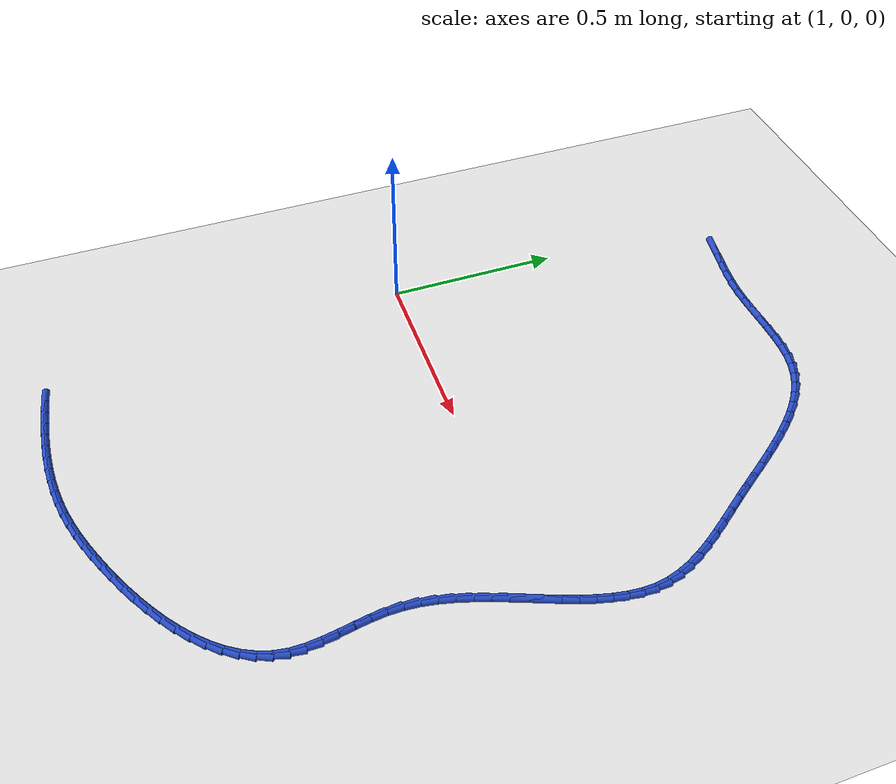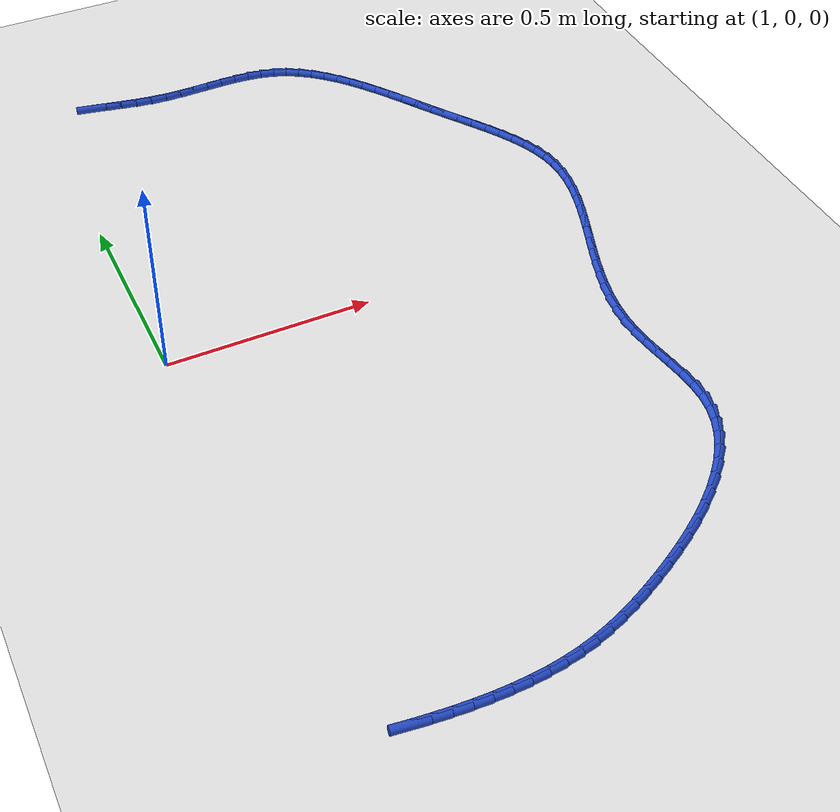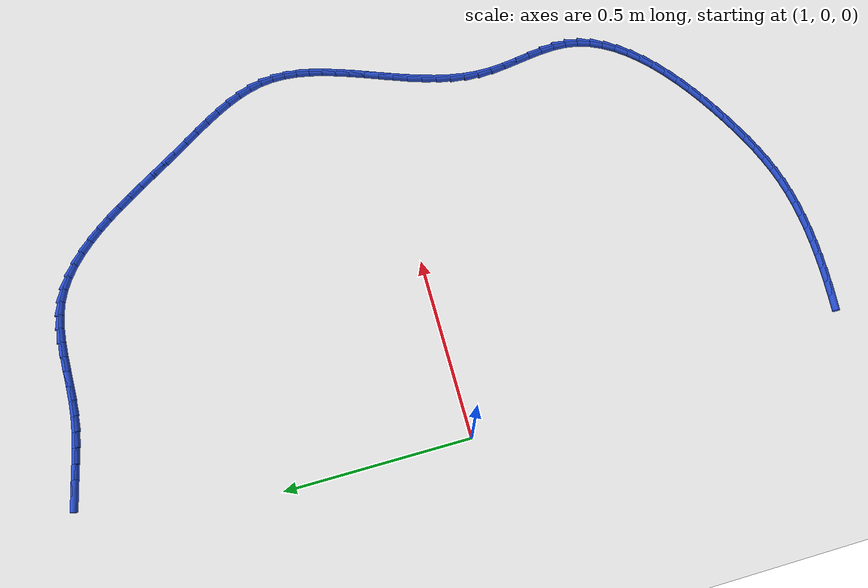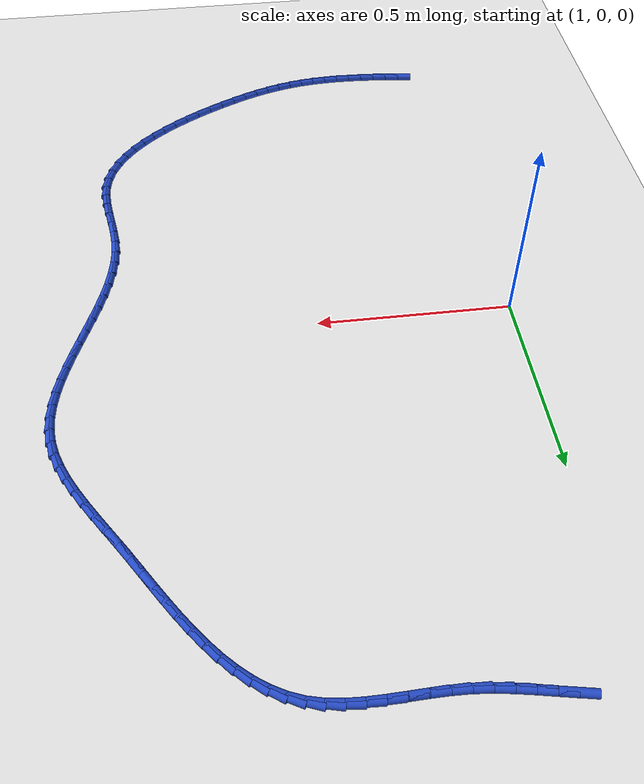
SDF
<sdf version="1.6">
 <world name="default">
  <model name="ground_plane">
   <static>1</static>
   <link name="link">
    <collision name="collision">
     <geometry><plane><normal>0 0 1</normal><size>100 100</size></plane></geometry>
     <surface><friction><ode><mu>100</mu><mu2>50</mu2></ode></friction></surface>
    </collision>
    <visual name="visual">
     <cast_shadows>0</cast_shadows>
     <geometry><plane><normal>0 0 1</normal><size>100 100</size></plane></geometry>
     <material>
      <script><uri>file://media/materials/scripts/gazebo.material</uri><name>Gazebo/WhiteGlow</name></script>
     </material>
    </visual>
   </link>
  </model>
  <model name="line">
   <link name="link_43">
    <pose>1.1327370070030243 1.010437711589605 0.01 0 1.57 -0.18697242384630391</pose>
    <collision name="collision">
     <geometry><cylinder><radius>0.01</radius><length>0.08</length></cylinder></geometry>
    </collision>
    <visual name="visual">
     <material>
      <script><name>Gazebo/Blue</name><uri>file://media/materials/scripts/gazebo.material</uri></script>
     </material>
     <geometry><cylinder><radius>0.01</radius><length>0.08</length></cylinder></geometry>
    </visual>
   </link>
   <link name="link_44">
    <pose>1.171977440912676 1.0030141239727182 0.01 0 1.57 -0.19207760746956504</pose>
    <collision name="collision">
     <geometry><cylinder><radius>0.01</radius><length>0.08</length></cylinder></geometry>
    </collision>
    <visual name="visual">
     <material>
      <script><name>Gazebo/Blue</name><uri>file://media/materials/scripts/gazebo.material</uri></script>
     </material>
     <geometry><cylinder><radius>0.01</radius><length>0.08</length></cylinder></geometry>
    </visual>
   </link>
   <link name="link_45">
    <pose>1.2115653838122473 0.9953152526959689 0.01 0 1.57 -0.1776722749751937</pose>
    <collision name="collision">
     <geometry><cylinder><radius>0.01</radius><length>0.08</length></cylinder></geometry>
    </collision>
    <visual name="visual">
     <material>
      <script><name>Gazebo/Blue</name><uri>file://media/materials/scripts/gazebo.material</uri></script>
     </material>
     <geometry><cylinder><radius>0.01</radius><length>0.08</length></cylinder></geometry>
    </visual>
   </link>
   <link name="link_46">
    <pose>1.2515378458271778 0.9881375679702079 0.01 0 1.57 -0.14406671686101993</pose>
    <collision name="collision">
     <geometry><cylinder><radius>0.01</radius><length>0.08</length></cylinder></geometry>
    </collision>
    <visual name="visual">
     <material>
      <script><name>Gazebo/Blue</name><uri>file://media/materials/scripts/gazebo.material</uri></script>
     </material>
     <geometry><cylinder><radius>0.01</radius><length>0.08</length></cylinder></geometry>
    </visual>
   </link>
   <link name="link_47">
    <pose>1.2919318370829087 0.982277540006286 0.01 0 1.57 -0.09146678892255376</pose>
    <collision name="collision">
     <geometry><cylinder><radius>0.01</radius><length>0.08</length></cylinder></geometry>
    </collision>
    <visual name="visual">
     <material>
      <script><name>Gazebo/Blue</name><uri>file://media/materials/scripts/gazebo.material</uri></script>
     </material>
     <geometry><cylinder><radius>0.01</radius><length>0.08</length></cylinder></geometry>
    </visual>
   </link>
   <link name="link_48">
    <pose>1.3327841298732073 0.9785304565483715 0.01 0 1.57 -0.031044724939890685</pose>
    <collision name="collision">
     <geometry><cylinder><radius>0.01</radius><length>0.08</length></cylinder></geometry>
    </collision>
    <visual name="visual">
     <material>
      <script><name>Gazebo/Blue</name><uri>file://media/materials/scripts/gazebo.material</uri></script>
     </material>
     <geometry><cylinder><radius>0.01</radius><length>0.08</length></cylinder></geometry>
    </visual>
   </link>
   <link name="link_49">
    <pose>1.3740425126423634 0.9772491897597785 0.01 0 1.57 0.010476320669949028</pose>
    <collision name="collision">
     <geometry><cylinder><radius>0.01</radius><length>0.08</length></cylinder></geometry>
    </collision>
    <visual name="visual">
     <material>
      <script><name>Gazebo/Blue</name><uri>file://media/materials/scripts/gazebo.material</uri></script>
     </material>
     <geometry><cylinder><radius>0.01</radius><length>0.08</length></cylinder></geometry>
    </visual>
   </link>
   <link name="link_50">
    <pose>1.4154327668275317 0.977682823199582 0.01 0 1.57 0.02979491065720952</pose>
    <collision name="collision">
     <geometry><cylinder><radius>0.01</radius><length>0.08</length></cylinder></geometry>
    </collision>
    <visual name="visual">
     <material>
      <script><name>Gazebo/Blue</name><uri>file://media/materials/scripts/gazebo.material</uri></script>
     </material>
     <geometry><cylinder><radius>0.01</radius><length>0.08</length></cylinder></geometry>
    </visual>
   </link>
   <link name="link_51">
    <pose>1.456646624153628 0.9789111498948614 0.01 0 1.57 0.02707010692603462</pose>
    <collision name="collision">
     <geometry><cylinder><radius>0.01</radius><length>0.08</length></cylinder></geometry>
    </collision>
    <visual name="visual">
     <material>
      <script><name>Gazebo/Blue</name><uri>file://media/materials/scripts/gazebo.material</uri></script>
     </material>
     <geometry><cylinder><radius>0.01</radius><length>0.08</length></cylinder></geometry>
    </visual>
   </link>
   <link name="link_52">
    <pose>1.4973758163455697 0.9800139628726963 0.01 0 1.57 0.0014295843004920234</pose>
    <collision name="collision">
     <geometry><cylinder><radius>0.01</radius><length>0.08</length></cylinder></geometry>
    </collision>
    <visual name="visual">
     <material>
      <script><name>Gazebo/Blue</name><uri>file://media/materials/scripts/gazebo.material</uri></script>
     </material>
     <geometry><cylinder><radius>0.01</radius><length>0.08</length></cylinder></geometry>
    </visual>
   </link>
   <link name="link_53">
    <pose>1.5373120751282734 0.9800710551601658 0.01 0 1.57 -0.049112851169080055</pose>
    <collision name="collision">
     <geometry><cylinder><radius>0.01</radius><length>0.08</length></cylinder></geometry>
    </collision>
    <visual name="visual">
     <material>
      <script><name>Gazebo/Blue</name><uri>file://media/materials/scripts/gazebo.material</uri></script>
     </material>
     <geometry><cylinder><radius>0.01</radius><length>0.08</length></cylinder></geometry>
    </visual>
   </link>
   <link name="link_54">
    <pose>1.5761471322266551 0.9781622197843488 0.01 0 1.57 -0.12742590527282288</pose>
    <collision name="collision">
     <geometry><cylinder><radius>0.01</radius><length>0.08</length></cylinder></geometry>
    </collision>
    <visual name="visual">
     <material>
      <script><name>Gazebo/Blue</name><uri>file://media/materials/scripts/gazebo.material</uri></script>
     </material>
     <geometry><cylinder><radius>0.01</radius><length>0.08</length></cylinder></geometry>
    </visual>
   </link>
   <link name="link_55">
    <pose>1.6135727193656337 0.9733672497723256 0.01 0 1.57 -0.23637345175117339</pose>
    <collision name="collision">
     <geometry><cylinder><radius>0.01</radius><length>0.08</length></cylinder></geometry>
    </collision>
    <visual name="visual">
     <material>
      <script><name>Gazebo/Blue</name><uri>file://media/materials/scripts/gazebo.material</uri></script>
     </material>
     <geometry><cylinder><radius>0.01</radius><length>0.08</length></cylinder></geometry>
    </visual>
   </link>
   <link name="link_56">
    <pose>1.6492806139703906 0.9647660619033969 0.01 0 1.57 -0.3685137428374353</pose>
    <collision name="collision">
     <geometry><cylinder><radius>0.01</radius><length>0.08</length></cylinder></geometry>
    </collision>
    <visual name="visual">
     <material>
      <script><name>Gazebo/Blue</name><uri>file://media/materials/scripts/gazebo.material</uri></script>
     </material>
     <geometry><cylinder><radius>0.01</radius><length>0.08</length></cylinder></geometry>
    </visual>
   </link>
   <link name="link_57">
    <pose>1.6830663559299277 0.9517195523998742 0.01 0 1.57 -0.4946535043019818</pose>
    <collision name="collision">
     <geometry><cylinder><radius>0.01</radius><length>0.08</length></cylinder></geometry>
    </collision>
    <visual name="visual">
     <material>
      <script><name>Gazebo/Blue</name><uri>file://media/materials/scripts/gazebo.material</uri></script>
     </material>
     <geometry><cylinder><radius>0.01</radius><length>0.08</length></cylinder></geometry>
    </visual>
   </link>
   <link name="link_58">
    <pose>1.715050253666191 0.9344680615348027 0.01 0 1.57 -0.6060366607881206</pose>
    <collision name="collision">
     <geometry><cylinder><radius>0.01</radius><length>0.08</length></cylinder></geometry>
    </collision>
    <visual name="visual">
     <material>
      <script><name>Gazebo/Blue</name><uri>file://media/materials/scripts/gazebo.material</uri></script>
     </material>
     <geometry><cylinder><radius>0.01</radius><length>0.08</length></cylinder></geometry>
    </visual>
   </link>
   <link name="link_59">
    <pose>1.7454159838278123 0.9134235250540369 0.01 0 1.57 -0.701155440004282</pose>
    <collision name="collision">
     <geometry><cylinder><radius>0.01</radius><length>0.08</length></cylinder></geometry>
    </collision>
    <visual name="visual">
     <material>
      <script><name>Gazebo/Blue</name><uri>file://media/materials/scripts/gazebo.material</uri></script>
     </material>
     <geometry><cylinder><radius>0.01</radius><length>0.08</length></cylinder></geometry>
    </visual>
   </link>
   <link name="link_60">
    <pose>1.774347223063422 0.8889978787034305 0.01 0 1.57 -0.7802124956566824</pose>
    <collision name="collision">
     <geometry><cylinder><radius>0.01</radius><length>0.08</length></cylinder></geometry>
    </collision>
    <visual name="visual">
     <material>
      <script><name>Gazebo/Blue</name><uri>file://media/materials/scripts/gazebo.material</uri></script>
     </material>
     <geometry><cylinder><radius>0.01</radius><length>0.08</length></cylinder></geometry>
    </visual>
   </link>
   <link name="link_61">
    <pose>1.8020276480216533 0.8616030582288373 0.01 0 1.57 -0.8443547942164572</pose>
    <collision name="collision">
     <geometry><cylinder><radius>0.01</radius><length>0.08</length></cylinder></geometry>
    </collision>
    <visual name="visual">
     <material>
      <script><name>Gazebo/Blue</name><uri>file://media/materials/scripts/gazebo.material</uri></script>
     </material>
     <geometry><cylinder><radius>0.01</radius><length>0.08</length></cylinder></geometry>
    </visual>
   </link>
   <link name="link_62">
    <pose>1.8286409353511361 0.8316509993761118 0.01 0 1.57 -0.8950695087315674</pose>
    <collision name="collision">
     <geometry><cylinder><radius>0.01</radius><length>0.08</length></cylinder></geometry>
    </collision>
    <visual name="visual">
     <material>
      <script><name>Gazebo/Blue</name><uri>file://media/materials/scripts/gazebo.material</uri></script>
     </material>
     <geometry><cylinder><radius>0.01</radius><length>0.08</length></cylinder></geometry>
    </visual>
   </link>
   <link name="link_63">
    <pose>1.854370761700503 0.799553637891107 0.01 0 1.57 -0.9338157150253733</pose>
    <collision name="collision">
     <geometry><cylinder><radius>0.01</radius><length>0.08</length></cylinder></geometry>
    </collision>
    <visual name="visual">
     <material>
      <script><name>Gazebo/Blue</name><uri>file://media/materials/scripts/gazebo.material</uri></script>
     </material>
     <geometry><cylinder><radius>0.01</radius><length>0.08</length></cylinder></geometry>
    </visual>
   </link>
   <link name="link_64">
    <pose>1.8794008037183847 0.7657229095196778 0.01 0 1.57 -0.9618400783355507</pose>
    <collision name="collision">
     <geometry><cylinder><radius>0.01</radius><length>0.08</length></cylinder></geometry>
    </collision>
    <visual name="visual">
     <material>
      <script><name>Gazebo/Blue</name><uri>file://media/materials/scripts/gazebo.material</uri></script>
     </material>
     <geometry><cylinder><radius>0.01</radius><length>0.08</length></cylinder></geometry>
    </visual>
   </link>
   <link name="link_65">
    <pose>1.9039147380534125 0.7305707500076776 0.01 0 1.57 -0.9801031800926108</pose>
    <collision name="collision">
     <geometry><cylinder><radius>0.01</radius><length>0.08</length></cylinder></geometry>
    </collision>
    <visual name="visual">
     <material>
      <script><name>Gazebo/Blue</name><uri>file://media/materials/scripts/gazebo.material</uri></script>
     </material>
     <geometry><cylinder><radius>0.01</radius><length>0.08</length></cylinder></geometry>
    </visual>
   </link>
   <link name="link_66">
    <pose>1.9280962413542189 0.6945090951009601 0.01 0 1.57 -0.989260997402861</pose>
    <collision name="collision">
     <geometry><cylinder><radius>0.01</radius><length>0.08</length></cylinder></geometry>
    </collision>
    <visual name="visual">
     <material>
      <script><name>Gazebo/Blue</name><uri>file://media/materials/scripts/gazebo.material</uri></script>
     </material>
     <geometry><cylinder><radius>0.01</radius><length>0.08</length></cylinder></geometry>
    </visual>
   </link>
   <link name="link_67">
    <pose>1.9521289902694339 0.6579498805453801 0.01 0 1.57 -0.9896681917891645</pose>
    <collision name="collision">
     <geometry><cylinder><radius>0.01</radius><length>0.08</length></cylinder></geometry>
    </collision>
    <visual name="visual">
     <material>
      <script><name>Gazebo/Blue</name><uri>file://media/materials/scripts/gazebo.material</uri></script>
     </material>
     <geometry><cylinder><radius>0.01</radius><length>0.08</length></cylinder></geometry>
    </visual>
   </link>
   <link name="link_68">
    <pose>1.9761966614476907 0.6213050420867908 0.01 0 1.57 -0.9814410797622237</pose>
    <collision name="collision">
     <geometry><cylinder><radius>0.01</radius><length>0.08</length></cylinder></geometry>
    </collision>
    <visual name="visual">
     <material>
      <script><name>Gazebo/Blue</name><uri>file://media/materials/scripts/gazebo.material</uri></script>
     </material>
     <geometry><cylinder><radius>0.01</radius><length>0.08</length></cylinder></geometry>
    </visual>
   </link>
   <link name="link_69">
    <pose>2.0004809611432925 0.5849851324418796 0.01 0 1.57 -0.9712053492613443</pose>
    <collision name="collision">
     <geometry><cylinder><radius>0.01</radius><length>0.08</length></cylinder></geometry>
    </collision>
    <visual name="visual">
     <material>
      <script><name>Gazebo/Blue</name><uri>file://media/materials/scripts/gazebo.material</uri></script>
     </material>
     <geometry><cylinder><radius>0.01</radius><length>0.08</length></cylinder></geometry>
    </visual>
   </link>
   <link name="link_70">
    <pose>2.024920735771882 0.549230239849291 0.01 0 1.57 -0.9723051321614041</pose>
    <collision name="collision">
     <geometry><cylinder><radius>0.01</radius><length>0.08</length></cylinder></geometry>
    </collision>
    <visual name="visual">
     <material>
      <script><name>Gazebo/Blue</name><uri>file://media/materials/scripts/gazebo.material</uri></script>
     </material>
     <geometry><cylinder><radius>0.01</radius><length>0.08</length></cylinder></geometry>
    </visual>
   </link>
   <link name="link_71">
    <pose>2.0489807535324855 0.5139476947883321 0.01 0 1.57 -0.9868465801911364</pose>
    <collision name="collision">
     <geometry><cylinder><radius>0.01</radius><length>0.08</length></cylinder></geometry>
    </collision>
    <visual name="visual">
     <material>
      <script><name>Gazebo/Blue</name><uri>file://media/materials/scripts/gazebo.material</uri></script>
     </material>
     <geometry><cylinder><radius>0.01</radius><length>0.08</length></cylinder></geometry>
    </visual>
   </link>
   <link name="link_72">
    <pose>2.0720709764454135 0.47900635902030775 0.01 0 1.57 -1.015862871302016</pose>
    <collision name="collision">
     <geometry><cylinder><radius>0.01</radius><length>0.08</length></cylinder></geometry>
    </collision>
    <visual name="visual">
     <material>
      <script><name>Gazebo/Blue</name><uri>file://media/materials/scripts/gazebo.material</uri></script>
     </material>
     <geometry><cylinder><radius>0.01</radius><length>0.08</length></cylinder></geometry>
    </visual>
   </link>
   <link name="link_73">
    <pose>2.093601366530979 0.4442750943065223 0.01 0 1.57 -1.0608527000063255</pose>
    <collision name="collision">
     <geometry><cylinder><radius>0.01</radius><length>0.08</length></cylinder></geometry>
    </collision>
    <visual name="visual">
     <material>
      <script><name>Gazebo/Blue</name><uri>file://media/materials/scripts/gazebo.material</uri></script>
     </material>
     <geometry><cylinder><radius>0.01</radius><length>0.08</length></cylinder></geometry>
    </visual>
   </link>
   <link name="link_74">
    <pose>2.112981885809495 0.4096227624082796 0.01 0 1.57 -1.1236878434630777</pose>
    <collision name="collision">
     <geometry><cylinder><radius>0.01</radius><length>0.08</length></cylinder></geometry>
    </collision>
    <visual name="visual">
     <material>
      <script><name>Gazebo/Blue</name><uri>file://media/materials/scripts/gazebo.material</uri></script>
     </material>
     <geometry><cylinder><radius>0.01</radius><length>0.08</length></cylinder></geometry>
    </visual>
   </link>
   <link name="link_75">
    <pose>2.1296224963012733 0.3749182250868848 0.01 0 1.57 -1.2063157913586733</pose>
    <collision name="collision">
     <geometry><cylinder><radius>0.01</radius><length>0.08</length></cylinder></geometry>
    </collision>
    <visual name="visual">
     <material>
      <script><name>Gazebo/Blue</name><uri>file://media/materials/scripts/gazebo.material</uri></script>
     </material>
     <geometry><cylinder><radius>0.01</radius><length>0.08</length></cylinder></geometry>
    </visual>
   </link>
   <link name="link_76">
    <pose>2.142933160026626 0.3400303441036419 0.01 0 1.57 -1.3101042368183262</pose>
    <collision name="collision">
     <geometry><cylinder><radius>0.01</radius><length>0.08</length></cylinder></geometry>
    </collision>
    <visual name="visual">
     <material>
      <script><name>Gazebo/Blue</name><uri>file://media/materials/scripts/gazebo.material</uri></script>
     </material>
     <geometry><cylinder><radius>0.01</radius><length>0.08</length></cylinder></geometry>
    </visual>
   </link>
   <link name="link_77">
    <pose>2.152323839005867 0.30482798121985527 0.01 0 1.57 -1.4335977611330513</pose>
    <collision name="collision">
     <geometry><cylinder><radius>0.01</radius><length>0.08</length></cylinder></geometry>
    </collision>
    <visual name="visual">
     <material>
      <script><name>Gazebo/Blue</name><uri>file://media/materials/scripts/gazebo.material</uri></script>
     </material>
     <geometry><cylinder><radius>0.01</radius><length>0.08</length></cylinder></geometry>
    </visual>
   </link>
   <link name="link_78">
    <pose>2.1572448606391506 0.2691854369229246 0.01 0 1.57 -1.5565648857223602</pose>
    <collision name="collision">
     <geometry><cylinder><radius>0.01</radius><length>0.08</length></cylinder></geometry>
    </collision>
    <visual name="visual">
     <material>
      <script><name>Gazebo/Blue</name><uri>file://media/materials/scripts/gazebo.material</uri></script>
     </material>
     <geometry><cylinder><radius>0.01</radius><length>0.08</length></cylinder></geometry>
    </visual>
   </link>
   <link name="link_79">
    <pose>2.157759019011677 0.23305953386541228 0.01 0 1.57 1.479381670420758</pose>
    <collision name="collision">
     <geometry><cylinder><radius>0.01</radius><length>0.08</length></cylinder></geometry>
    </collision>
    <visual name="visual">
     <material>
      <script><name>Gazebo/Blue</name><uri>file://media/materials/scripts/gazebo.material</uri></script>
     </material>
     <geometry><cylinder><radius>0.01</radius><length>0.08</length></cylinder></geometry>
    </visual>
   </link>
   <link name="link_80">
    <pose>2.154404961865347 0.19647120998159492 0.01 0 1.57 1.392544693919448</pose>
    <collision name="collision">
     <geometry><cylinder><radius>0.01</radius><length>0.08</length></cylinder></geometry>
    </collision>
    <visual name="visual">
     <material>
      <script><name>Gazebo/Blue</name><uri>file://media/materials/scripts/gazebo.material</uri></script>
     </material>
     <geometry><cylinder><radius>0.01</radius><length>0.08</length></cylinder></geometry>
    </visual>
   </link>
   <link name="link_81">
    <pose>2.1477338329829023 0.15944308688972905 0.01 0 1.57 1.323915078519038</pose>
    <collision name="collision">
     <geometry><cylinder><radius>0.01</radius><length>0.08</length></cylinder></geometry>
    </collision>
    <visual name="visual">
     <material>
      <script><name>Gazebo/Blue</name><uri>file://media/materials/scripts/gazebo.material</uri></script>
     </material>
     <geometry><cylinder><radius>0.01</radius><length>0.08</length></cylinder></geometry>
    </visual>
   </link>
   <link name="link_82">
    <pose>2.138296776147086 0.12199778620807102 0.01 0 1.57 1.2720847655947245</pose>
    <collision name="collision">
     <geometry><cylinder><radius>0.01</radius><length>0.08</length></cylinder></geometry>
    </collision>
    <visual name="visual">
     <material>
      <script><name>Gazebo/Blue</name><uri>file://media/materials/scripts/gazebo.material</uri></script>
     </material>
     <geometry><cylinder><radius>0.01</radius><length>0.08</length></cylinder></geometry>
    </visual>
   </link>
   <link name="link_83">
    <pose>2.1266449351406402 0.08415792955487836 0.01 0 1.57 1.235489419676839</pose>
    <collision name="collision">
     <geometry><cylinder><radius>0.01</radius><length>0.08</length></cylinder></geometry>
    </collision>
    <visual name="visual">
     <material>
      <script><name>Gazebo/Blue</name><uri>file://media/materials/scripts/gazebo.material</uri></script>
     </material>
     <geometry><cylinder><radius>0.01</radius><length>0.08</length></cylinder></geometry>
    </visual>
   </link>
   <link name="link_84">
    <pose>2.1133294537463065 0.04594613854840695 0.01 0 1.57 1.2127633122162744</pose>
    <collision name="collision">
     <geometry><cylinder><radius>0.01</radius><length>0.08</length></cylinder></geometry>
    </collision>
    <visual name="visual">
     <material>
      <script><name>Gazebo/Blue</name><uri>file://media/materials/scripts/gazebo.material</uri></script>
     </material>
     <geometry><cylinder><radius>0.01</radius><length>0.08</length></cylinder></geometry>
    </visual>
   </link>
   <link name="link_85">
    <pose>2.0989014757468283 0.007385034806914357 0.01 0 1.57 1.2028949562697575</pose>
    <collision name="collision">
     <geometry><cylinder><radius>0.01</radius><length>0.08</length></cylinder></geometry>
    </collision>
    <visual name="visual">
     <material>
      <script><name>Gazebo/Blue</name><uri>file://media/materials/scripts/gazebo.material</uri></script>
     </material>
     <geometry><cylinder><radius>0.01</radius><length>0.08</length></cylinder></geometry>
    </visual>
   </link>
   <link name="link_86">
    <pose>2.0839121449249465 -0.03150276005134305 0.01 0 1.57 1.2052740173977825</pose>
    <collision name="collision">
     <geometry><cylinder><radius>0.01</radius><length>0.08</length></cylinder></geometry>
    </collision>
    <visual name="visual">
     <material>
      <script><name>Gazebo/Blue</name><uri>file://media/materials/scripts/gazebo.material</uri></script>
     </material>
     <geometry><cylinder><radius>0.01</radius><length>0.08</length></cylinder></geometry>
    </visual>
   </link>
   <link name="link_87">
    <pose>2.068912605063405 -0.07069462440810859 0.01 0 1.57 1.2196852629468036</pose>
    <collision name="collision">
     <geometry><cylinder><radius>0.01</radius><length>0.08</length></cylinder></geometry>
    </collision>
    <visual name="visual">
     <material>
      <script><name>Gazebo/Blue</name><uri>file://media/materials/scripts/gazebo.material</uri></script>
     </material>
     <geometry><cylinder><radius>0.01</radius><length>0.08</length></cylinder></geometry>
    </visual>
   </link>
   <link name="link_88">
    <pose>2.054453999944945 -0.11016793664512536 0.01 0 1.57 1.2462739544822443</pose>
    <collision name="collision">
     <geometry><cylinder><radius>0.01</radius><length>0.08</length></cylinder></geometry>
    </collision>
    <visual name="visual">
     <material>
      <script><name>Gazebo/Blue</name><uri>file://media/materials/scripts/gazebo.material</uri></script>
     </material>
     <geometry><cylinder><radius>0.01</radius><length>0.08</length></cylinder></geometry>
    </visual>
   </link>
   <link name="link_89">
    <pose>2.0410874733523086 -0.1499000751441375 0.01 0 1.57 1.2854840244678987</pose>
    <collision name="collision">
     <geometry><cylinder><radius>0.01</radius><length>0.08</length></cylinder></geometry>
    </collision>
    <visual name="visual">
     <material>
      <script><name>Gazebo/Blue</name><uri>file://media/materials/scripts/gazebo.material</uri></script>
     </material>
     <geometry><cylinder><radius>0.01</radius><length>0.08</length></cylinder></geometry>
    </visual>
   </link>
   <link name="link_90">
    <pose>2.0293641690682387 -0.18986841828688678 0.01 0 1.57 1.3379527083883125</pose>
    <collision name="collision">
     <geometry><cylinder><radius>0.01</radius><length>0.08</length></cylinder></geometry>
    </collision>
    <visual name="visual">
     <material>
      <script><name>Gazebo/Blue</name><uri>file://media/materials/scripts/gazebo.material</uri></script>
     </material>
     <geometry><cylinder><radius>0.01</radius><length>0.08</length></cylinder></geometry>
    </visual>
   </link>
   <link name="link_91">
    <pose>2.0198352308754774 -0.23005034445511707 0.01 0 1.57 1.4043317664961772</pose>
    <collision name="collision">
     <geometry><cylinder><radius>0.01</radius><length>0.08</length></cylinder></geometry>
    </collision>
    <visual name="visual">
     <material>
      <script><name>Gazebo/Blue</name><uri>file://media/materials/scripts/gazebo.material</uri></script>
     </material>
     <geometry><cylinder><radius>0.01</radius><length>0.08</length></cylinder></geometry>
    </visual>
   </link>
   <link name="link_92">
    <pose>2.0130518025567676 -0.2704232320305717 0.01 0 1.57 1.485001799792822</pose>
    <collision name="collision">
     <geometry><cylinder><radius>0.01</radius><length>0.08</length></cylinder></geometry>
    </collision>
    <visual name="visual">
     <material>
      <script><name>Gazebo/Blue</name><uri>file://media/materials/scripts/gazebo.material</uri></script>
     </material>
     <geometry><cylinder><radius>0.01</radius><length>0.08</length></cylinder></geometry>
    </visual>
   </link>
   <link name="link_93">
    <pose>2.00956502789485 -0.31096445939499395 0.01 0 1.57 -1.5626220089406406</pose>
    <collision name="collision">
     <geometry><cylinder><radius>0.01</radius><length>0.08</length></cylinder></geometry>
    </collision>
    <visual name="visual">
     <material>
      <script><name>Gazebo/Blue</name><uri>file://media/materials/scripts/gazebo.material</uri></script>
     </material>
     <geometry><cylinder><radius>0.01</radius><length>0.08</length></cylinder></geometry>
    </visual>
   </link>
   <link name="link_94">
    <pose>2.0098976014469523 -0.35164872816651427 0.01 0 1.57 -1.4780368301165854</pose>
    <collision name="collision">
     <geometry><cylinder><radius>0.01</radius><length>0.08</length></cylinder></geometry>
    </collision>
    <visual name="visual">
     <material>
      <script><name>Gazebo/Blue</name><uri>file://media/materials/scripts/gazebo.material</uri></script>
     </material>
     <geometry><cylinder><radius>0.01</radius><length>0.08</length></cylinder></geometry>
    </visual>
   </link>
   <link name="link_95">
    <pose>2.0136855069713064 -0.3923673100926942 0.01 0 1.57 -1.4277421622358257</pose>
    <collision name="collision">
     <geometry><cylinder><radius>0.01</radius><length>0.08</length></cylinder></geometry>
    </collision>
    <visual name="visual">
     <material>
      <script><name>Gazebo/Blue</name><uri>file://media/materials/scripts/gazebo.material</uri></script>
     </material>
     <geometry><cylinder><radius>0.01</radius><length>0.08</length></cylinder></geometry>
    </visual>
   </link>
   <link name="link_96">
    <pose>2.019525733137398 -0.4329137187502579 0.01 0 1.57 -1.4120332758216174</pose>
    <collision name="collision">
     <geometry><cylinder><radius>0.01</radius><length>0.08</length></cylinder></geometry>
    </collision>
    <visual name="visual">
     <material>
      <script><name>Gazebo/Blue</name><uri>file://media/materials/scripts/gazebo.material</uri></script>
     </material>
     <geometry><cylinder><radius>0.01</radius><length>0.08</length></cylinder></geometry>
    </visual>
   </link>
   <link name="link_97">
    <pose>2.0259561225036022 -0.47307590270826216 0.01 0 1.57 -1.4312252715934781</pose>
    <collision name="collision">
     <geometry><cylinder><radius>0.01</radius><length>0.08</length></cylinder></geometry>
    </collision>
    <visual name="visual">
     <material>
      <script><name>Gazebo/Blue</name><uri>file://media/materials/scripts/gazebo.material</uri></script>
     </material>
     <geometry><cylinder><radius>0.01</radius><length>0.08</length></cylinder></geometry>
    </visual>
   </link>
   <link name="link_98">
    <pose>2.0315145176282914 -0.5126418105357636 0.01 0 1.57 -1.4877974327294796</pose>
    <collision name="collision">
     <geometry><cylinder><radius>0.01</radius><length>0.08</length></cylinder></geometry>
    </collision>
    <visual name="visual">
     <material>
      <script><name>Gazebo/Blue</name><uri>file://media/materials/scripts/gazebo.material</uri></script>
     </material>
     <geometry><cylinder><radius>0.01</radius><length>0.08</length></cylinder></geometry>
    </visual>
   </link>
   <link name="link_99">
    <pose>2.0347387610698418 -0.5513993908018197 0.01 0 1.57 1.5556382904414239</pose>
    <collision name="collision">
     <geometry><cylinder><radius>0.01</radius><length>0.08</length></cylinder></geometry>
    </collision>
    <visual name="visual">
     <material>
      <script><name>Gazebo/Blue</name><uri>file://media/materials/scripts/gazebo.material</uri></script>
     </material>
     <geometry><cylinder><radius>0.01</radius><length>0.08</length></cylinder></geometry>
    </visual>
   </link>
   <link name="link_100">
    <pose>2.0341666953866255 -0.5891365920754856 0.01 0 1.57 1.4149304845848303</pose>
    <collision name="collision">
     <geometry><cylinder><radius>0.01</radius><length>0.08</length></cylinder></geometry>
    </collision>
    <visual name="visual">
     <material>
      <script><name>Gazebo/Blue</name><uri>file://media/materials/scripts/gazebo.material</uri></script>
     </material>
     <geometry><cylinder><radius>0.01</radius><length>0.08</length></cylinder></geometry>
    </visual>
   </link>
   <link name="link_101">
    <pose>2.028428858538171 -0.6256506610158677 0.01 0 1.57 1.2638239433079308</pose>
    <collision name="collision">
     <geometry><cylinder><radius>0.01</radius><length>0.08</length></cylinder></geometry>
    </collision>
    <visual name="visual">
     <material>
      <script><name>Gazebo/Blue</name><uri>file://media/materials/scripts/gazebo.material</uri></script>
     </material>
     <geometry><cylinder><radius>0.01</radius><length>0.08</length></cylinder></geometry>
    </visual>
   </link>
   <link name="link_102">
    <pose>2.0172707180800655 -0.6608506806369863 0.01 0 1.57 1.1271615385998066</pose>
    <collision name="collision">
     <geometry><cylinder><radius>0.01</radius><length>0.08</length></cylinder></geometry>
    </collision>
    <visual name="visual">
     <material>
      <script><name>Gazebo/Blue</name><uri>file://media/materials/scripts/gazebo.material</uri></script>
     </material>
     <geometry><cylinder><radius>0.01</radius><length>0.08</length></cylinder></geometry>
    </visual>
   </link>
   <link name="link_103">
    <pose>2.0011751906041146 -0.6947197059887972 0.01 0 1.57 1.0075591871193967</pose>
    <collision name="collision">
     <geometry><cylinder><radius>0.01</radius><length>0.08</length></cylinder></geometry>
    </collision>
    <visual name="visual">
     <material>
      <script><name>Gazebo/Blue</name><uri>file://media/materials/scripts/gazebo.material</uri></script>
     </material>
     <geometry><cylinder><radius>0.01</radius><length>0.08</length></cylinder></geometry>
    </visual>
   </link>
   <link name="link_104">
    <pose>1.9806383248003 -0.7272421093757262 0.01 0 1.57 0.9048434098394056</pose>
    <collision name="collision">
     <geometry><cylinder><radius>0.01</radius><length>0.08</length></cylinder></geometry>
    </collision>
    <visual name="visual">
     <material>
      <script><name>Gazebo/Blue</name><uri>file://media/materials/scripts/gazebo.material</uri></script>
     </material>
     <geometry><cylinder><radius>0.01</radius><length>0.08</length></cylinder></geometry>
    </visual>
   </link>
   <link name="link_105">
    <pose>1.956156169358599 -0.758402263102196 0.01 0 1.57 0.817457218866873</pose>
    <collision name="collision">
     <geometry><cylinder><radius>0.01</radius><length>0.08</length></cylinder></geometry>
    </collision>
    <visual name="visual">
     <material>
      <script><name>Gazebo/Blue</name><uri>file://media/materials/scripts/gazebo.material</uri></script>
     </material>
     <geometry><cylinder><radius>0.01</radius><length>0.08</length></cylinder></geometry>
    </visual>
   </link>
   <link name="link_106">
    <pose>1.9282247729689908 -0.7881845394726311 0.01 0 1.57 0.7433161238974959</pose>
    <collision name="collision">
     <geometry><cylinder><radius>0.01</radius><length>0.08</length></cylinder></geometry>
    </collision>
    <visual name="visual">
     <material>
      <script><name>Gazebo/Blue</name><uri>file://media/materials/scripts/gazebo.material</uri></script>
     </material>
     <geometry><cylinder><radius>0.01</radius><length>0.08</length></cylinder></geometry>
    </visual>
   </link>
   <link name="link_107">
    <pose>1.8973401843214555 -0.816573310791457 0.01 0 1.57 0.680316675589294</pose>
    <collision name="collision">
     <geometry><cylinder><radius>0.01</radius><length>0.08</length></cylinder></geometry>
    </collision>
    <visual name="visual">
     <material>
      <script><name>Gazebo/Blue</name><uri>file://media/materials/scripts/gazebo.material</uri></script>
     </material>
     <geometry><cylinder><radius>0.01</radius><length>0.08</length></cylinder></geometry>
    </visual>
   </link>
   <link name="link_108">
    <pose>1.8639984521059718 -0.8435529493630972 0.01 0 1.57 0.6265712161867685</pose>
    <collision name="collision">
     <geometry><cylinder><radius>0.01</radius><length>0.08</length></cylinder></geometry>
    </collision>
    <visual name="visual">
     <material>
      <script><name>Gazebo/Blue</name><uri>file://media/materials/scripts/gazebo.material</uri></script>
     </material>
     <geometry><cylinder><radius>0.01</radius><length>0.08</length></cylinder></geometry>
    </visual>
   </link>
   <link name="link_109">
    <pose>1.8286956250125186 -0.8691078274919766 0.01 0 1.57 0.5804820423850138</pose>
    <collision name="collision">
     <geometry><cylinder><radius>0.01</radius><length>0.08</length></cylinder></geometry>
    </collision>
    <visual name="visual">
     <material>
      <script><name>Gazebo/Blue</name><uri>file://media/materials/scripts/gazebo.material</uri></script>
     </material>
     <geometry><cylinder><radius>0.01</radius><length>0.08</length></cylinder></geometry>
    </visual>
   </link>
   <link name="link_110">
    <pose>1.791927751731075 -0.8932223174825198 0.01 0 1.57 0.5407380482066283</pose>
    <collision name="collision">
     <geometry><cylinder><radius>0.01</radius><length>0.08</length></cylinder></geometry>
    </collision>
    <visual name="visual">
     <material>
      <script><name>Gazebo/Blue</name><uri>file://media/materials/scripts/gazebo.material</uri></script>
     </material>
     <geometry><cylinder><radius>0.01</radius><length>0.08</length></cylinder></geometry>
    </visual>
   </link>
   <link name="link_111">
    <pose>1.7541908809516218 -0.9158807916391503 0.01 0 1.57 0.5062812438345572</pose>
    <collision name="collision">
     <geometry><cylinder><radius>0.01</radius><length>0.08</length></cylinder></geometry>
    </collision>
    <visual name="visual">
     <material>
      <script><name>Gazebo/Blue</name><uri>file://media/materials/scripts/gazebo.material</uri></script>
     </material>
     <geometry><cylinder><radius>0.01</radius><length>0.08</length></cylinder></geometry>
    </visual>
   </link>
   <link name="link_112">
    <pose>1.7159810613641362 -0.9370676222662928 0.01 0 1.57 0.4762665004710049</pose>
    <collision name="collision">
     <geometry><cylinder><radius>0.01</radius><length>0.08</length></cylinder></geometry>
    </collision>
    <visual name="visual">
     <material>
      <script><name>Gazebo/Blue</name><uri>file://media/materials/scripts/gazebo.material</uri></script>
     </material>
     <geometry><cylinder><radius>0.01</radius><length>0.08</length></cylinder></geometry>
    </visual>
   </link>
   <link name="link_113">
    <pose>1.6777943416585988 -0.956767181668372 0.01 0 1.57 0.4493317239281102</pose>
    <collision name="collision">
     <geometry><cylinder><radius>0.01</radius><length>0.08</length></cylinder></geometry>
    </collision>
    <visual name="visual">
     <material>
      <script><name>Gazebo/Blue</name><uri>file://media/materials/scripts/gazebo.material</uri></script>
     </material>
     <geometry><cylinder><radius>0.01</radius><length>0.08</length></cylinder></geometry>
    </visual>
   </link>
   <link name="link_114">
    <pose>1.6400750271840439 -0.9749566088726206 0.01 0 1.57 0.4191307792599104</pose>
    <collision name="collision">
     <geometry><cylinder><radius>0.01</radius><length>0.08</length></cylinder></geometry>
    </collision>
    <visual name="visual">
     <material>
      <script><name>Gazebo/Blue</name><uri>file://media/materials/scripts/gazebo.material</uri></script>
     </material>
     <geometry><cylinder><radius>0.01</radius><length>0.08</length></cylinder></geometry>
    </visual>
   </link>
   <link name="link_115">
    <pose>1.6028274462921013 -0.9915515378793007 0.01 0 1.57 0.3825439103712002</pose>
    <collision name="collision">
     <geometry><cylinder><radius>0.01</radius><length>0.08</length></cylinder></geometry>
    </collision>
    <visual name="visual">
     <material>
      <script><name>Gazebo/Blue</name><uri>file://media/materials/scripts/gazebo.material</uri></script>
     </material>
     <geometry><cylinder><radius>0.01</radius><length>0.08</length></cylinder></geometry>
    </visual>
   </link>
   <link name="link_116">
    <pose>1.5658337125030162 -1.0064365389528938 0.01 0 1.57 0.3396505832182013</pose>
    <collision name="collision">
     <geometry><cylinder><radius>0.01</radius><length>0.08</length></cylinder></geometry>
    </collision>
    <visual name="visual">
     <material>
      <script><name>Gazebo/Blue</name><uri>file://media/materials/scripts/gazebo.material</uri></script>
     </material>
     <geometry><cylinder><radius>0.01</radius><length>0.08</length></cylinder></geometry>
    </visual>
   </link>
   <link name="link_117">
    <pose>1.528874228120347 -1.0194959431444006 0.01 0 1.57 0.2908315161516132</pose>
    <collision name="collision">
     <geometry><cylinder><radius>0.01</radius><length>0.08</length></cylinder></geometry>
    </collision>
    <visual name="visual">
     <material>
      <script><name>Gazebo/Blue</name><uri>file://media/materials/scripts/gazebo.material</uri></script>
     </material>
     <geometry><cylinder><radius>0.01</radius><length>0.08</length></cylinder></geometry>
    </visual>
   </link>
   <link name="link_118">
    <pose>1.491729395447654 -1.0306140815048237 0.01 0 1.57 0.23678644765121973</pose>
    <collision name="collision">
     <geometry><cylinder><radius>0.01</radius><length>0.08</length></cylinder></geometry>
    </collision>
    <visual name="visual">
     <material>
      <script><name>Gazebo/Blue</name><uri>file://media/materials/scripts/gazebo.material</uri></script>
     </material>
     <geometry><cylinder><radius>0.01</radius><length>0.08</length></cylinder></geometry>
    </visual>
   </link>
   <link name="link_119">
    <pose>1.4541796675169487 -1.0396753327975177 0.01 0 1.57 0.18037336135353182</pose>
    <collision name="collision">
     <geometry><cylinder><radius>0.01</radius><length>0.08</length></cylinder></geometry>
    </collision>
    <visual name="visual">
     <material>
      <script><name>Gazebo/Blue</name><uri>file://media/materials/scripts/gazebo.material</uri></script>
     </material>
     <geometry><cylinder><radius>0.01</radius><length>0.08</length></cylinder></geometry>
    </visual>
   </link>
   <link name="link_120">
    <pose>1.4160700788188167 -1.0466248175038333 0.01 0 1.57 0.1277520321969661</pose>
    <collision name="collision">
     <geometry><cylinder><radius>0.01</radius><length>0.08</length></cylinder></geometry>
    </collision>
    <visual name="visual">
     <material>
      <script><name>Gazebo/Blue</name><uri>file://media/materials/scripts/gazebo.material</uri></script>
     </material>
     <geometry><cylinder><radius>0.01</radius><length>0.08</length></cylinder></geometry>
    </visual>
   </link>
   <link name="link_121">
    <pose>1.3774367024188392 -1.051587336333864 0.01 0 1.57 0.07999635128807189</pose>
    <collision name="collision">
     <geometry><cylinder><radius>0.01</radius><length>0.08</length></cylinder></geometry>
    </collision>
    <visual name="visual">
     <material>
      <script><name>Gazebo/Blue</name><uri>file://media/materials/scripts/gazebo.material</uri></script>
     </material>
     <geometry><cylinder><radius>0.01</radius><length>0.08</length></cylinder></geometry>
    </visual>
   </link>
   <link name="link_122">
    <pose>1.3383507670140642 -1.0547207554239026 0.01 0 1.57 0.03703112014419247</pose>
    <collision name="collision">
     <geometry><cylinder><radius>0.01</radius><length>0.08</length></cylinder></geometry>
    </collision>
    <visual name="visual">
     <material>
      <script><name>Gazebo/Blue</name><uri>file://media/materials/scripts/gazebo.material</uri></script>
     </material>
     <geometry><cylinder><radius>0.01</radius><length>0.08</length></cylinder></geometry>
    </visual>
   </link>
   <link name="link_123">
    <pose>1.2988835013015365 -1.056182940910243 0.01 0 1.57 -0.0012867104150421265</pose>
    <collision name="collision">
     <geometry><cylinder><radius>0.01</radius><length>0.08</length></cylinder></geometry>
    </collision>
    <visual name="visual">
     <material>
      <script><name>Gazebo/Blue</name><uri>file://media/materials/scripts/gazebo.material</uri></script>
     </material>
     <geometry><cylinder><radius>0.01</radius><length>0.08</length></cylinder></geometry>
    </visual>
   </link>
   <link name="link_124">
    <pose>1.2591061339783034 -1.0561317589291792 0.01 0 1.57 -0.03513834160325177</pose>
    <collision name="collision">
     <geometry><cylinder><radius>0.01</radius><length>0.08</length></cylinder></geometry>
    </collision>
    <visual name="visual">
     <material>
      <script><name>Gazebo/Blue</name><uri>file://media/materials/scripts/gazebo.material</uri></script>
     </material>
     <geometry><cylinder><radius>0.01</radius><length>0.08</length></cylinder></geometry>
    </visual>
   </link>
   <link name="link_125">
    <pose>1.2190898937414107 -1.0547250756170046 0.01 0 1.57 -0.06471951042173789</pose>
    <collision name="collision">
     <geometry><cylinder><radius>0.01</radius><length>0.08</length></cylinder></geometry>
    </collision>
    <visual name="visual">
     <material>
      <script><name>Gazebo/Blue</name><uri>file://media/materials/scripts/gazebo.material</uri></script>
     </material>
     <geometry><cylinder><radius>0.01</radius><length>0.08</length></cylinder></geometry>
    </visual>
   </link>
   <link name="link_126">
    <pose>1.1789060092879042 -1.0521207571100126 0.01 0 1.57 -0.09022262558322894</pose>
    <collision name="collision">
     <geometry><cylinder><radius>0.01</radius><length>0.08</length></cylinder></geometry>
    </collision>
    <visual name="visual">
     <material>
      <script><name>Gazebo/Blue</name><uri>file://media/materials/scripts/gazebo.material</uri></script>
     </material>
     <geometry><cylinder><radius>0.01</radius><length>0.08</length></cylinder></geometry>
    </visual>
   </link>
   <link name="link_127">
    <pose>1.138625709314831 -1.0484766695444965 0.01 0 1.57 -0.11182372302201297</pose>
    <collision name="collision">
     <geometry><cylinder><radius>0.01</radius><length>0.08</length></cylinder></geometry>
    </collision>
    <visual name="visual">
     <material>
      <script><name>Gazebo/Blue</name><uri>file://media/materials/scripts/gazebo.material</uri></script>
     </material>
     <geometry><cylinder><radius>0.01</radius><length>0.08</length></cylinder></geometry>
    </visual>
   </link>
   <link name="link_128">
    <pose>1.0983202225192374 -1.0439506790567505 0.01 0 1.57 -0.12967311487805458</pose>
    <collision name="collision">
     <geometry><cylinder><radius>0.01</radius><length>0.08</length></cylinder></geometry>
    </collision>
    <visual name="visual">
     <material>
      <script><name>Gazebo/Blue</name><uri>file://media/materials/scripts/gazebo.material</uri></script>
     </material>
     <geometry><cylinder><radius>0.01</radius><length>0.08</length></cylinder></geometry>
    </visual>
   </link>
  </model>
 </world>
</sdf>
